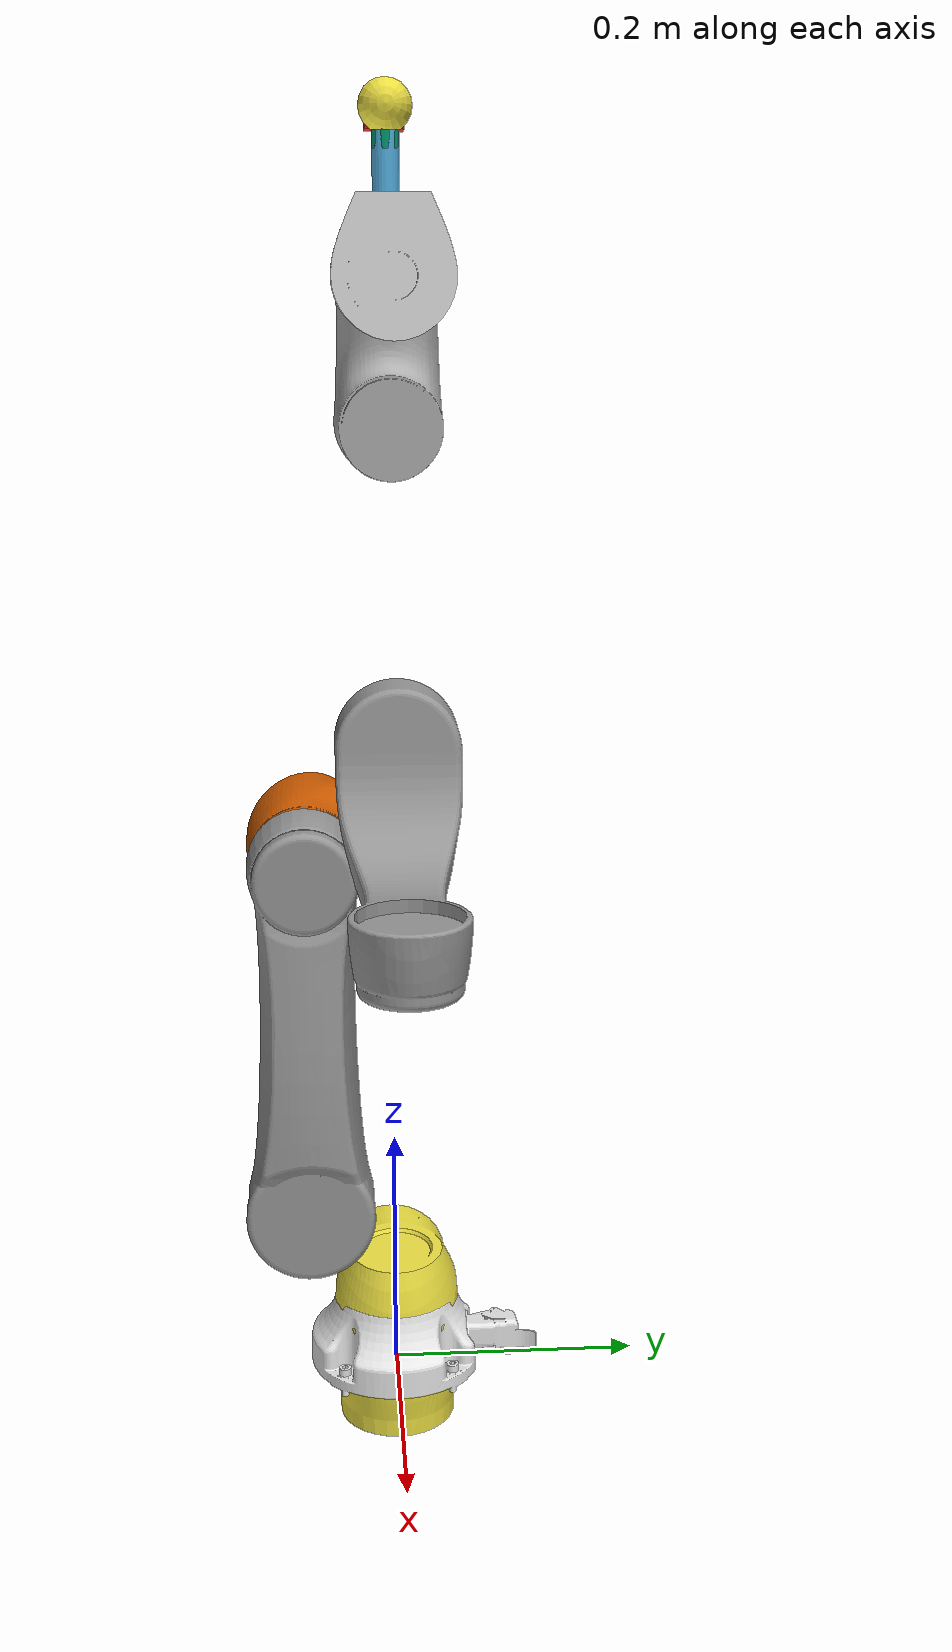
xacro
<robot
  name="elfin3" xmlns:xacro="http://www.ros.org/wiki/xacro">

  <xacro:include filename="$(find elfin_description)/urdf/materials.xacro" />

  <xacro:include filename="$(find elfin_description)/urdf/elfin_robot.gazebo" />

  <xacro:include filename="$(find elfin_description)/urdf/elfin_transmission.xacro" />

  <xacro:property name="PI" value="3.1415926535897931"/>

  <link name="world"/>

  <joint name="world_base" type="fixed">
    <origin
      xyz="0 0 0"
      rpy="0 0 0" />
    <parent
      link="world" />
    <child
      link="elfin_base_link" />
  </joint>

  <link name="elfin_base_link"/>

  <joint name="elfin_base_joint" type="fixed">
    <origin
      xyz="0 0 0"
      rpy="0 0 ${PI/2}" />
    <parent
      link="elfin_base_link" />
    <child
      link="elfin_base" />
  </joint>

  <link
    name="elfin_base">
    <inertial>
      <origin
        xyz="-0.0319402056221453 0.427120668618383 -5.39351164605318E-06"
        rpy="0 0 0" />
      <mass
        value="0.0268461773395224" />
      <inertia
        ixx="0.291480854811486"
        ixy="-0.00222433961096429"
        ixz="-2.01923964457691E-06"
        iyy="0.0113685309214344"
        iyz="-3.62155285906403E-06"
        izz="0.298007263296196" />
    </inertial>
    <visual>
      <origin
        xyz="0 0 0"
        rpy="0 0 0" />
      <geometry>
        <mesh
          filename="package://elfin_description/meshes/elfin3/elfin_base.STL" />
      </geometry>
      <material
        name="metal_white"/>
    </visual>
    <collision>
      <origin
        xyz="0 0 0"
        rpy="0 0 0" />
      <geometry>
        <mesh
          filename="package://elfin_description/meshes/elfin3/elfin_base.STL" />
      </geometry>
    </collision>
  </link>
  <link
    name="elfin_link1">
    <inertial>
      <origin
        xyz="-0.0192918165822649 0.120142940373248 -9.33059379656128E-06"
        rpy="0 0 0" />
      <mass
        value="1.52637984956046" />
      <inertia
        ixx="0.00527544044696735"
        ixy="0.00123465778378514"
        ixz="-6.71312813911233E-07"
        iyy="0.00317642212936588"
        iyz="-3.23660070050034E-07"
        izz="0.00651212770034193" />
    </inertial>
    <visual>
      <origin
        xyz="0 0 0"
        rpy="0 0 0" />
      <geometry>
        <mesh
          filename="package://elfin_description/meshes/elfin3/elfin_link1.STL" />
      </geometry>
      <material
        name="metal"/>
    </visual>
    <collision>
      <origin
        xyz="0 0 0"
        rpy="0 0 0" />
      <geometry>
        <mesh
          filename="package://elfin_description/meshes/elfin3/elfin_link1.STL" />
      </geometry>
    </collision>
  </link>
  <joint
    name="elfin_joint1"
    type="revolute">
    <origin
      xyz="0 0 0.031"
      rpy="${PI/2} 0 0" />
    <parent
      link="elfin_base" />
    <child
      link="elfin_link1" />
    <axis
      xyz="0 1 0" />
    <dynamics
      damping="1"
      friction="1" />
    <limit
      lower="-3.14"
      upper="3.14"
      effort="120"
      velocity="1.57" />
  </joint>
  <link
    name="elfin_link2">
    <inertial>
      <origin
        xyz="-0.036466516774824 0.121897297057332 -2.81161718183357E-05"
        rpy="0 0 0" />
      <mass
        value="0.519454683951505" />
      <inertia
        ixx="0.00565995615696724"
        ixy="-0.000264286704227211"
        ixz="9.00238413174917E-08"
        iyy="0.000537503501646015"
        iyz="2.30075042384658E-06"
        izz="0.00546582402574428" />
    </inertial>
    <visual>
      <origin
        xyz="0 0 0"
        rpy="0 0 0" />
      <geometry>
        <mesh
          filename="package://elfin_description/meshes/elfin3/elfin_link2.STL" />
      </geometry>
      <material
        name="metal_grey"/>
    </visual>
    <collision>
      <origin
        xyz="0 0 0"
        rpy="0 0 0" />
      <geometry>
        <mesh
          filename="package://elfin_description/meshes/elfin3/elfin_link2.STL" />
      </geometry>
    </collision>
  </link>
  <joint
    name="elfin_joint2"
    type="revolute">
    <origin
      xyz="-0.068808 0.1615 0"
      rpy="0 0 0" />
    <parent
      link="elfin_link1" />
    <child
      link="elfin_link2" />
    <axis
      xyz="-1 0 0" />
    <dynamics
      damping="1"
      friction="1" />
    <limit
      lower="-2.35"
      upper="2.35"
      effort="120"
      velocity="1.57" />
  </joint>
  <link
    name="elfin_link3">
    <inertial>
      <origin
        xyz="0.0512991448419209 -0.0377654897323815 -7.04730066125333E-06"
        rpy="0 0 0" />
      <mass
        value="1.07922053966635" />
      <inertia
        ixx="0.00298738624023049"
        ixy="0.000725824493179576"
        ixz="4.96115488717236E-07"
        iyy="0.00183400941739145"
        iyz="-2.66433909735348E-07"
        izz="0.00375395532323906" />
    </inertial>
    <visual>
      <origin
        xyz="0 0 0"
        rpy="0 0 0" />
      <geometry>
        <mesh
          filename="package://elfin_description/meshes/elfin3/elfin_link3.STL" />
      </geometry>
      <material
        name="metal"/>
    </visual>
    <collision>
      <origin
        xyz="0 0 0"
        rpy="0 0 0" />
      <geometry>
        <mesh
          filename="package://elfin_description/meshes/elfin3/elfin_link3.STL" />
      </geometry>
    </collision>
  </link>
  <joint
    name="elfin_joint3"
    type="revolute">
    <origin
      xyz="0 0.266 0"
      rpy="${-PI} 0 0" />
    <parent
      link="elfin_link2" />
    <child
      link="elfin_link3" />
    <axis
      xyz="1 0 0" />
    <dynamics
      damping="1"
      friction="1" />
    <limit
      lower="-2.61"
      upper="2.61"
      effort="120"
      velocity="1.57" />
  </joint>
  <link
    name="elfin_link4">
    <inertial>
      <origin
        xyz="-0.0583601900884385 0.100119219162888 -3.33183498268088E-07"
        rpy="0 0 0" />
      <mass
        value="0.369677539276185" />
      <inertia
        ixx="0.00237292271100579"
        ixy="0.000824081879058636"
        ixz="-8.45848544546041E-09"
        iyy="0.000956009074525509"
        iyz="-3.93294162811061E-09"
        izz="0.00283923133217817" />
    </inertial>
    <visual>
      <origin
        xyz="0 0 0"
        rpy="0 0 0" />
      <geometry>
        <mesh
          filename="package://elfin_description/meshes/elfin3/elfin_link4.STL" />
      </geometry>
      <material
        name="metal_grey"/>
    </visual>
    <collision>
      <origin
        xyz="0 0 0"
        rpy="0 0 0" />
      <geometry>
        <mesh
          filename="package://elfin_description/meshes/elfin3/elfin_link4.STL" />
      </geometry>
    </collision>
  </link>
  <joint
    name="elfin_joint4"
    type="revolute">
    <origin
      xyz="0.068808 -0.10523 0"
      rpy="${PI} 0 0" />
    <parent
      link="elfin_link3" />
    <child
      link="elfin_link4" />
    <axis
      xyz="0 1 0" />
    <dynamics
      damping="1"
      friction="1" />
    <limit
      lower="-3.14"
      upper="3.14"
      effort="120"
      velocity="1.57" />
  </joint>
  <link
    name="elfin_link5">
    <inertial>
      <origin
        xyz="-0.0159268625326372 -0.0365461558991834 2.29158666616884E-06"
        rpy="0 0 0" />
      <mass
        value="0.81052865799498" />
      <inertia
        ixx="0.00195203104787827"
        ixy="0.000475249185078403"
        ixz="-4.08714933153791E-08"
        iyy="0.0011361781195507"
        iyz="1.7320616235908E-08"
        izz="0.00247459893149932" />
    </inertial>
    <visual>
      <origin
        xyz="0 0 0"
        rpy="0 0 0" />
      <geometry>
        <mesh
          filename="package://elfin_description/meshes/elfin3/elfin_link5.STL" />
      </geometry>
      <material
        name="metal"/>
    </visual>
    <collision>
      <origin
        xyz="0 0 0"
        rpy="0 0 0" />
      <geometry>
        <mesh
          filename="package://elfin_description/meshes/elfin3/elfin_link5.STL" />
      </geometry>
    </collision>
  </link>
  <joint
    name="elfin_joint5"
    type="revolute">
    <origin
      xyz="0 0.21877 0"
      rpy="${-PI} 0 0" />
    <parent
      link="elfin_link4" />
    <child
      link="elfin_link5" />
    <axis
      xyz="1 0 0" />
    <dynamics
      damping="1"
      friction="1" />
    <limit
      lower="-2.56"
      upper="2.56"
      effort="120"
      velocity="1.57" />
  </joint>
  <link
    name="elfin_link6">
    <inertial>
      <origin
        xyz="0.0219175619250529 0.461879324434722 -0.0232335370431645"
        rpy="0 0 0" />
      <mass
        value="0.11342880515576" />
      <inertia
        ixx="0.294935032119192"
        ixy="-0.0015239945221609"
        ixz="0.0032576119002927"
        iyy="0.0113685309214282"
        iyz="0.00162022853851308"
        izz="0.294553085988403" />
    </inertial>
    <visual>
      <origin
        xyz="0 0 0"
        rpy="0 0 0" />
      <geometry>
        <mesh
          filename="package://elfin_description/meshes/elfin3/elfin_link6.STL" />
      </geometry>
      <material
        name="metal_white"/>
    </visual>
    <collision>
      <origin
        xyz="0 0 0"
        rpy="0 0 0" />
      <geometry>
        <mesh
          filename="package://elfin_description/meshes/elfin3/elfin_link6.STL" />
      </geometry>
    </collision>
  </link>
  <joint
    name="elfin_joint6"
    type="revolute">
    <origin
      xyz="0 -0.1065 0"
      rpy="${-PI} 0 ${-PI}" />
    <parent
      link="elfin_link5" />
    <child
      link="elfin_link6" />
    <axis
      xyz="0 -1 0" />
    <dynamics
      damping="1"
      friction="1" />
    <limit
      lower="-3.14"
      upper="3.14"
      effort="120"
      velocity="1.57" />
  </joint>

  <link name="elfin_tool">
    <collision>
      <origin xyz="0 0 0" rpy="${PI/2} 0 0"/>
      <geometry>
        <cylinder length="0.08" radius="0.01"/>
      </geometry>
    </collision>

    <visual>
      <origin xyz="0 0 0" rpy="${PI/2} 0 0" />
      <geometry>
        <cylinder length="0.08" radius="0.01"/>
      </geometry>
    </visual>

    <inertial>
      <mass value="0.01" />
      <origin xyz="0 0 0" rpy="0 0 0"/>
      <inertia ixx="0.01" ixy="0" ixz="0" iyy="0.01" iyz="0" izz="0.01" />
    </inertial>
  </link>

  <joint name="tool_joint" type="fixed">
    <parent link="elfin_link6"/>
    <child link="elfin_tool"/>
    <origin xyz="0 -0.08 0" rpy="0 0 0" />
  </joint>

  <link name="elfin_ft_sensor_link">
    <collision>
      <origin xyz="0 0 0" rpy="${PI/2} 0 0"/>
      <geometry>
        <cylinder length="0.02" radius="0.01"/>
      </geometry>
    </collision>

    <visual>
      <origin xyz="0 0 0" rpy="${PI/2} 0 0" />
      <geometry>
        <cylinder length="0.02" radius="0.01"/>
      </geometry>
    </visual>

    <inertial>
      <mass value="0.01" />
      <origin xyz="0 0 0" rpy="0 0 0"/>
      <inertia ixx="0.01" ixy="0" ixz="0" iyy="0.01" iyz="0" izz="0.01" />
    </inertial>
  </link>

  <joint name="ft_sensor_joint" type="revolute">
    <parent link="elfin_tool"/>
    <child link="elfin_ft_sensor_link"/>
    <origin xyz="0 -0.02 0" rpy="0 0 0" />
    <axis xyz="0 -1 0"/>
    <dynamics
      damping="10"
      spring="100"
      friction="1" />
    <limit
      lower="0.0"
      upper="0.0"
      effort="0.0"
      velocity="0.0" />
  </joint>

  <link name="elfin_tool_ball">
    <collision>
      <origin xyz="0 0 0" rpy="0 0 0"/>
      <geometry>
        <sphere radius="0.02"/>
      </geometry>
      <surface>
        <friction>
          <ode>
            <mu>0.01</mu>
            <mu2>0.01</mu2>
            <fdir1>0 0 1</fdir1>
            <slip1>0.0</slip1>
            <slip2>0.0</slip2>
          </ode>
        </friction>
        <contact>
          <ode>
            <min_depth>5</min_depth>
            <kp>1e6</kp>
          </ode>
        </contact>
      </surface>
    </collision>
    <collision>
      <origin xyz="0 0 0" rpy="0 0 0"/>
      <geometry>
        <sphere radius="0.02"/>
      </geometry>
    </collision>

    <visual>
      <origin xyz="0 0 0" rpy="0 0 0" />
      <geometry>
        <sphere radius="0.02"/>
      </geometry>
    </visual>

    <inertial>
      <mass value="0.01" />
      <origin xyz="0 0 0" rpy="0 0 0"/>
      <inertia ixx="0.01" ixy="0" ixz="0" iyy="0.01" iyz="0" izz="0.01" />
    </inertial>
  </link>

  <joint name="tool_ball_joint" type="fixed">
    <parent link="elfin_tool"/>
    <child link="elfin_tool_ball"/>
    <origin xyz="0 -0.04 0" rpy="0 0 0" />
  </joint>
  <xacro:include filename="$(find elfin_description)/urdf/camera.xacro" />

</robot>

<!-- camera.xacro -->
<robot xmlns:xacro="http://www.ros.org/wiki/xacro">

  <xacro:property name="camera_link" value="0.03" /> <!-- Size of square 'camera' box -->
  <xacro:property name="PI" value="3.1415926535897931"/>
  <link name="camera_link">
    <collision>
      <origin xyz="0.0 0.0 0.00" rpy="0 0 0.0"/>
      <geometry>
    <box size="${camera_link} ${camera_link} ${camera_link}"/>
      </geometry>
    </collision>

    <visual>
      <origin xyz="0 0 0.00" rpy="0 0 0"/>
      <geometry>
    <box size="${camera_link} ${camera_link} ${camera_link}"/>
      </geometry>
      <material name="red"/>
    </visual>

    <inertial>
      <mass value="1e-5" />
      <origin xyz="0 0 0" rpy="0 0 0"/>
      <inertia ixx="1e-6" ixy="0" ixz="0" iyy="1e-6" iyz="0" izz="1e-6" />
    </inertial>
  </link>

 <joint name="camera_joint" type="fixed">
    <axis xyz="0 1 0" />
    <origin xyz="0 0.00 -0.03" rpy="0 0 ${-PI/2}"/>
    <parent link="elfin_tool_ball"/>
    <child link="camera_link"/>
  </joint>

  <link name="camera_link_optical">
  </link>

  <joint name="camera_optical_joint" type="fixed">
    <!-- these values have to be these values otherwise the gazebo camera
        image won't be aligned properly with the frame it is supposedly
        originating from -->
    <origin xyz="0 0 0" rpy="${-pi/2} 0 ${-pi/2}"/>
    <parent link="camera_link"/>
    <child link="camera_link_optical"/>
  </joint>

<gazebo reference="camera_link">
  <sensor name="camera" type="depth">
    <update_rate>20</update_rate>
    <camera>
      <horizontal_fov>1.047198</horizontal_fov>
      <image>
        <width>640</width>
        <height>480</height>
        <format>R8G8B8</format>
      </image>
      <clip>
        <near>0.05</near>
        <far>3</far>
      </clip>
    </camera>
    <plugin name="camera_controller" filename="libgazebo_ros_openni_kinect.so">
      <baseline>0.2</baseline>
      <alwaysOn>true</alwaysOn>
      <updateRate>1.0</updateRate>
      <cameraName></cameraName>
      <imageTopicName>/camera/image</imageTopicName>
      <cameraInfoTopicName>/camera/camera_info</cameraInfoTopicName>
      <depthImageTopicName>/camera/depth/image_raw</depthImageTopicName>
      <depthImageInfoTopicName>/camera/depth/camera_info</depthImageInfoTopicName>
      <pointCloudTopicName>/camera/depth/points</pointCloudTopicName>
      <frameName>camera_link_optical</frameName>
      <pointCloudCutoff>0.5</pointCloudCutoff>
      <pointCloudCutoffMax>3.0</pointCloudCutoffMax>
      <distortionK1>0.00000001</distortionK1>
      <distortionK2>0.00000001</distortionK2>
      <distortionK3>0.00000001</distortionK3>
      <distortionT1>0.00000001</distortionT1>
      <distortionT2>0.00000001</distortionT2>
      <CxPrime>0</CxPrime>
      <Cx>0</Cx>
      <Cy>0</Cy>
      <focalLength>0</focalLength>
      <hackBaseline>0</hackBaseline>
    </plugin>
  </sensor>
</gazebo>
</robot>
